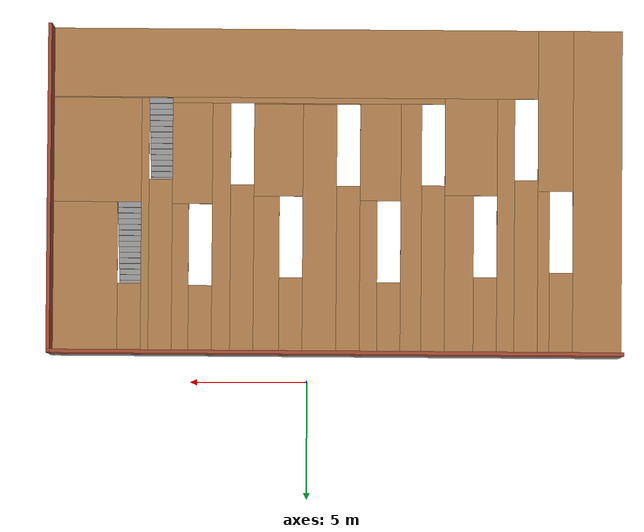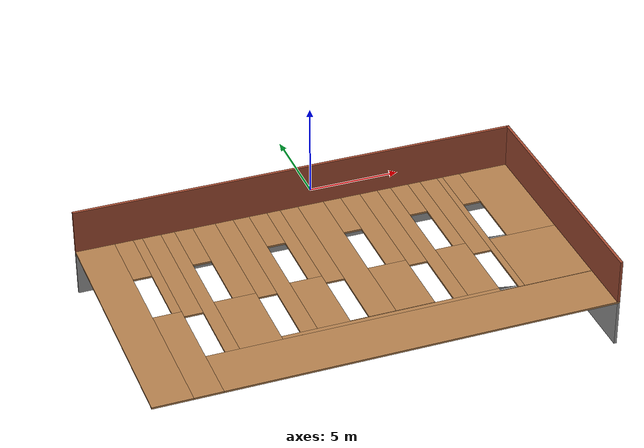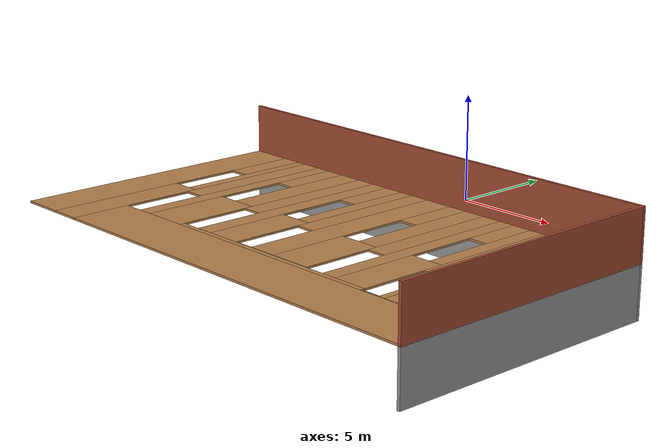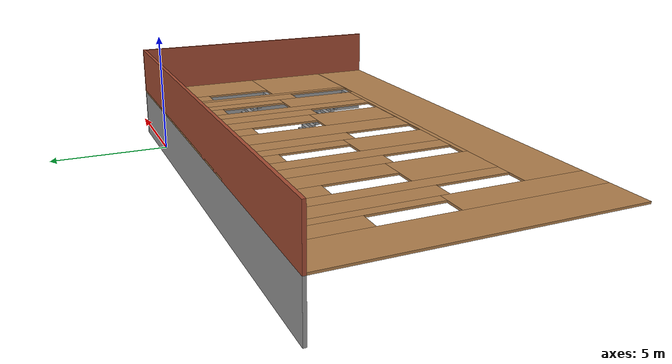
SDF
<sdf version="1.6">
 <world name="default">
  <model name="Untitled_2">
   <pose>-1.18521 -8.18185 -2.6 0 -0 0</pose>
   <link name="Floor_4">
    <pose>1e-06 0 2.5 0 -0 0</pose>
    <visual name="Floor_4_Visual_0">
     <pose>-11.2032 0 0.05 0 -0 0</pose>
     <geometry><box><size>2.09357 14 0.1</size></box></geometry>
     <material>
      <script><uri>file://media/materials/scripts/gazebo.material</uri><name>Gazebo/Wood</name></script>
      <ambient>1 1 1 1</ambient>
     </material>
     <meta><layer>1</layer></meta>
    </visual>
    <collision name="Floor_4_Collision_0">
     <geometry><box><size>2.09357 14 0.1</size></box></geometry>
     <pose>-11.2032 0 0.05 0 -0 0</pose>
    </collision>
    <visual name="Floor_4_Visual_1">
     <pose>-9.40436 -3.55244 0.05 0 -0 0</pose>
     <geometry><box><size>1.50415 6.89513 0.1</size></box></geometry>
     <material>
      <script><uri>file://media/materials/scripts/gazebo.material</uri><name>Gazebo/Wood</name></script>
      <ambient>1 1 1 1</ambient>
     </material>
     <meta><layer>1</layer></meta>
    </visual>
    <collision name="Floor_4_Collision_1">
     <geometry><box><size>1.50415 6.89513 0.1</size></box></geometry>
     <pose>-9.40436 -3.55244 0.05 0 -0 0</pose>
    </collision>
    <visual name="Floor_4_Visual_2">
     <pose>1.79886 -5.52881 0.05 0 -0 0</pose>
     <geometry><box><size>20.9023 2.94238 0.1</size></box></geometry>
     <material>
      <script><uri>file://media/materials/scripts/gazebo.material</uri><name>Gazebo/Wood</name></script>
      <ambient>1 1 1 1</ambient>
     </material>
     <meta><layer>1</layer></meta>
    </visual>
    <collision name="Floor_4_Collision_2">
     <geometry><box><size>20.9023 2.94238 0.1</size></box></geometry>
     <pose>1.79886 -5.52881 0.05 0 -0 0</pose>
    </collision>
    <visual name="Floor_4_Visual_3">
     <pose>-7.27778 1.47119 0.05 0 -0 0</pose>
     <geometry><box><size>0.749006 11.0576 0.1</size></box></geometry>
     <material>
      <script><uri>file://media/materials/scripts/gazebo.material</uri><name>Gazebo/Wood</name></script>
      <ambient>1 1 1 1</ambient>
     </material>
     <meta><layer>1</layer></meta>
    </visual>
    <collision name="Floor_4_Collision_3">
     <geometry><box><size>0.749006 11.0576 0.1</size></box></geometry>
     <pose>-7.27778 1.47119 0.05 0 -0 0</pose>
    </collision>
    <visual name="Floor_4_Visual_4">
     <pose>-5.78392 -1.97631 0.05 0 -0 0</pose>
     <geometry><box><size>2.23873 4.16263 0.1</size></box></geometry>
     <material>
      <script><uri>file://media/materials/scripts/gazebo.material</uri><name>Gazebo/Wood</name></script>
      <ambient>1 1 1 1</ambient>
     </material>
     <meta><layer>1</layer></meta>
    </visual>
    <collision name="Floor_4_Collision_4">
     <geometry><box><size>2.23873 4.16263 0.1</size></box></geometry>
     <pose>-5.78392 -1.97631 0.05 0 -0 0</pose>
    </collision>
    <visual name="Floor_4_Visual_5">
     <pose>1.17713 -3.93519 0.05 0 -0 0</pose>
     <geometry><box><size>11.6834 0.244861 0.1</size></box></geometry>
     <material>
      <script><uri>file://media/materials/scripts/gazebo.material</uri><name>Gazebo/Wood</name></script>
      <ambient>1 1 1 1</ambient>
     </material>
     <meta><layer>1</layer></meta>
    </visual>
    <collision name="Floor_4_Collision_5">
     <geometry><box><size>11.6834 0.244861 0.1</size></box></geometry>
     <pose>1.17713 -3.93519 0.05 0 -0 0</pose>
    </collision>
    <visual name="Floor_4_Visual_6">
     <pose>9.6344 -4.04013 0.05 0 -0 0</pose>
     <geometry><box><size>5.23119 0.03498 0.1</size></box></geometry>
     <material>
      <script><uri>file://media/materials/scripts/gazebo.material</uri><name>Gazebo/Wood</name></script>
      <ambient>1 1 1 1</ambient>
     </material>
     <meta><layer>1</layer></meta>
    </visual>
    <collision name="Floor_4_Collision_6">
     <geometry><box><size>5.23119 0.03498 0.1</size></box></geometry>
     <pose>9.6344 -4.04013 0.05 0 -0 0</pose>
    </collision>
    <visual name="Floor_4_Visual_7">
     <pose>8.18343 1.48868 0.05 0 -0 0</pose>
     <geometry><box><size>0.329245 11.0226 0.1</size></box></geometry>
     <material>
      <script><uri>file://media/materials/scripts/gazebo.material</uri><name>Gazebo/Wood</name></script>
      <ambient>1 1 1 1</ambient>
     </material>
     <meta><layer>1</layer></meta>
    </visual>
    <collision name="Floor_4_Collision_7">
     <geometry><box><size>0.329245 11.0226 0.1</size></box></geometry>
     <pose>8.18343 1.48868 0.05 0 -0 0</pose>
    </collision>
    <visual name="Floor_4_Visual_8">
     <pose>10.299 -1.78392 0.05 0 -0 0</pose>
     <geometry><box><size>3.90194 4.47746 0.1</size></box></geometry>
     <material>
      <script><uri>file://media/materials/scripts/gazebo.material</uri><name>Gazebo/Wood</name></script>
      <ambient>1 1 1 1</ambient>
     </material>
     <meta><layer>1</layer></meta>
    </visual>
    <collision name="Floor_4_Collision_8">
     <geometry><box><size>3.90194 4.47746 0.1</size></box></geometry>
     <pose>10.299 -1.78392 0.05 0 -0 0</pose>
    </collision>
    <visual name="Floor_4_Visual_9">
     <pose>-3.22009 1.59362 0.05 0 -0 0</pose>
     <geometry><box><size>0.888927 10.8128 0.1</size></box></geometry>
     <material>
      <script><uri>file://media/materials/scripts/gazebo.material</uri><name>Gazebo/Wood</name></script>
      <ambient>1 1 1 1</ambient>
     </material>
     <meta><layer>1</layer></meta>
    </visual>
    <collision name="Floor_4_Collision_9">
     <geometry><box><size>0.888927 10.8128 0.1</size></box></geometry>
     <pose>-3.22009 1.59362 0.05 0 -0 0</pose>
    </collision>
    <visual name="Floor_4_Visual_10">
     <pose>4.91279 1.59362 0.05 0 -0 0</pose>
     <geometry><box><size>0.783986 10.8128 0.1</size></box></geometry>
     <material>
      <script><uri>file://media/materials/scripts/gazebo.material</uri><name>Gazebo/Wood</name></script>
      <ambient>1 1 1 1</ambient>
     </material>
     <meta><layer>1</layer></meta>
    </visual>
    <collision name="Floor_4_Collision_10">
     <geometry><box><size>0.783986 10.8128 0.1</size></box></geometry>
     <pose>4.91279 1.59362 0.05 0 -0 0</pose>
    </collision>
    <visual name="Floor_4_Visual_11">
     <pose>-1.90112 -1.73145 0.05 0 -0 0</pose>
     <geometry><box><size>1.74901 4.16263 0.1</size></box></geometry>
     <material>
      <script><uri>file://media/materials/scripts/gazebo.material</uri><name>Gazebo/Wood</name></script>
      <ambient>1 1 1 1</ambient>
     </material>
     <meta><layer>1</layer></meta>
    </visual>
    <collision name="Floor_4_Collision_11">
     <geometry><box><size>1.74901 4.16263 0.1</size></box></geometry>
     <pose>-1.90112 -1.73145 0.05 0 -0 0</pose>
    </collision>
    <visual name="Floor_4_Visual_12">
     <pose>6.1618 -1.644 0.05 0 -0 0</pose>
     <geometry><box><size>1.71403 4.33754 0.1</size></box></geometry>
     <material>
      <script><uri>file://media/materials/scripts/gazebo.material</uri><name>Gazebo/Wood</name></script>
      <ambient>1 1 1 1</ambient>
     </material>
     <meta><layer>1</layer></meta>
    </visual>
    <collision name="Floor_4_Collision_12">
     <geometry><box><size>1.71403 4.33754 0.1</size></box></geometry>
     <pose>6.1618 -1.644 0.05 0 -0 0</pose>
    </collision>
    <visual name="Floor_4_Visual_13">
     <pose>1.24709 -3.79527 0.05 0 -0 0</pose>
     <geometry><box><size>4.54742 0.034981 0.1</size></box></geometry>
     <material>
      <script><uri>file://media/materials/scripts/gazebo.material</uri><name>Gazebo/Wood</name></script>
      <ambient>1 1 1 1</ambient>
     </material>
     <meta><layer>1</layer></meta>
    </visual>
    <collision name="Floor_4_Collision_13">
     <geometry><box><size>4.54742 0.034981 0.1</size></box></geometry>
     <pose>1.24709 -3.79527 0.05 0 -0 0</pose>
    </collision>
    <visual name="Floor_4_Visual_14">
     <pose>0.697686 1.61111 0.05 0 -0 0</pose>
     <geometry><box><size>1.44861 10.7778 0.1</size></box></geometry>
     <material>
      <script><uri>file://media/materials/scripts/gazebo.material</uri><name>Gazebo/Wood</name></script>
      <ambient>1 1 1 1</ambient>
     </material>
     <meta><layer>1</layer></meta>
    </visual>
    <collision name="Floor_4_Collision_14">
     <geometry><box><size>1.44861 10.7778 0.1</size></box></geometry>
     <pose>0.697686 1.61111 0.05 0 -0 0</pose>
    </collision>
    <visual name="Floor_4_Visual_15">
     <pose>2.47139 -1.80141 0.05 0 -0 0</pose>
     <geometry><box><size>2.09881 3.95275 0.1</size></box></geometry>
     <material>
      <script><uri>file://media/materials/scripts/gazebo.material</uri><name>Gazebo/Wood</name></script>
      <ambient>1 1 1 1</ambient>
     </material>
     <meta><layer>1</layer></meta>
    </visual>
    <collision name="Floor_4_Collision_15">
     <geometry><box><size>2.09881 3.95275 0.1</size></box></geometry>
     <pose>2.47139 -1.80141 0.05 0 -0 0</pose>
    </collision>
    <visual name="Floor_4_Visual_16">
     <pose>-8.15228 3.22119 0.05 0 -0 0</pose>
     <geometry><box><size>1 7.55762 0.1</size></box></geometry>
     <material>
      <script><uri>file://media/materials/scripts/gazebo.material</uri><name>Gazebo/Wood</name></script>
      <ambient>1 1 1 1</ambient>
     </material>
     <meta><layer>1</layer></meta>
    </visual>
    <collision name="Floor_4_Collision_16">
     <geometry><box><size>1 7.55762 0.1</size></box></geometry>
     <pose>-8.15228 3.22119 0.05 0 -0 0</pose>
    </collision>
    <visual name="Floor_4_Visual_17">
     <pose>7.51881 3.23868 0.05 0 -0 0</pose>
     <geometry><box><size>1 7.52264 0.1</size></box></geometry>
     <material>
      <script><uri>file://media/materials/scripts/gazebo.material</uri><name>Gazebo/Wood</name></script>
      <ambient>1 1 1 1</ambient>
     </material>
     <meta><layer>1</layer></meta>
    </visual>
    <collision name="Floor_4_Collision_17">
     <geometry><box><size>1 7.52264 0.1</size></box></geometry>
     <pose>7.51881 3.23868 0.05 0 -0 0</pose>
    </collision>
    <visual name="Floor_4_Visual_18">
     <pose>-4.16455 3.34362 0.05 0 -0 0</pose>
     <geometry><box><size>1 7.31276 0.1</size></box></geometry>
     <material>
      <script><uri>file://media/materials/scripts/gazebo.material</uri><name>Gazebo/Wood</name></script>
      <ambient>1 1 1 1</ambient>
     </material>
     <meta><layer>1</layer></meta>
    </visual>
    <collision name="Floor_4_Collision_18">
     <geometry><box><size>1 7.31276 0.1</size></box></geometry>
     <pose>-4.16455 3.34362 0.05 0 -0 0</pose>
    </collision>
    <visual name="Floor_4_Visual_19">
     <pose>4.0208 3.34362 0.05 0 -0 0</pose>
     <geometry><box><size>1 7.31276 0.1</size></box></geometry>
     <material>
      <script><uri>file://media/materials/scripts/gazebo.material</uri><name>Gazebo/Wood</name></script>
      <ambient>1 1 1 1</ambient>
     </material>
     <meta><layer>1</layer></meta>
    </visual>
    <collision name="Floor_4_Collision_19">
     <geometry><box><size>1 7.31276 0.1</size></box></geometry>
     <pose>4.0208 3.34362 0.05 0 -0 0</pose>
    </collision>
    <visual name="Floor_4_Visual_20">
     <pose>-0.526618 3.36111 0.05 0 -0 0</pose>
     <geometry><box><size>1 7.27778 0.1</size></box></geometry>
     <material>
      <script><uri>file://media/materials/scripts/gazebo.material</uri><name>Gazebo/Wood</name></script>
      <ambient>1 1 1 1</ambient>
     </material>
     <meta><layer>1</layer></meta>
    </visual>
    <collision name="Floor_4_Collision_20">
     <geometry><box><size>1 7.27778 0.1</size></box></geometry>
     <pose>-0.526618 3.36111 0.05 0 -0 0</pose>
    </collision>
    <visual name="Floor_4_Visual_21">
     <pose>-8.90436 3.44756 0.05 0 -0 0</pose>
     <geometry><box><size>0.504146 7.10487 0.1</size></box></geometry>
     <material>
      <script><uri>file://media/materials/scripts/gazebo.material</uri><name>Gazebo/Wood</name></script>
      <ambient>1 1 1 1</ambient>
     </material>
     <meta><layer>1</layer></meta>
    </visual>
    <collision name="Floor_4_Collision_21">
     <geometry><box><size>0.504146 7.10487 0.1</size></box></geometry>
     <pose>-8.90436 3.44756 0.05 0 -0 0</pose>
    </collision>
    <visual name="Floor_4_Visual_22">
     <pose>-5.28392 3.55251 0.05 0 -0 0</pose>
     <geometry><box><size>1.23873 6.89499 0.1</size></box></geometry>
     <material>
      <script><uri>file://media/materials/scripts/gazebo.material</uri><name>Gazebo/Wood</name></script>
      <ambient>1 1 1 1</ambient>
     </material>
     <meta><layer>1</layer></meta>
    </visual>
    <collision name="Floor_4_Collision_22">
     <geometry><box><size>1.23873 6.89499 0.1</size></box></geometry>
     <pose>-5.28392 3.55251 0.05 0 -0 0</pose>
    </collision>
    <visual name="Floor_4_Visual_23">
     <pose>2.97139 3.58749 0.05 0 -0 0</pose>
     <geometry><box><size>1.09881 6.82503 0.1</size></box></geometry>
     <material>
      <script><uri>file://media/materials/scripts/gazebo.material</uri><name>Gazebo/Wood</name></script>
      <ambient>1 1 1 1</ambient>
     </material>
     <meta><layer>1</layer></meta>
    </visual>
    <collision name="Floor_4_Collision_23">
     <geometry><box><size>1.09881 6.82503 0.1</size></box></geometry>
     <pose>2.97139 3.58749 0.05 0 -0 0</pose>
    </collision>
    <visual name="Floor_4_Visual_24">
     <pose>-1.40112 3.67494 0.05 0 -0 0</pose>
     <geometry><box><size>0.749006 6.65013 0.1</size></box></geometry>
     <material>
      <script><uri>file://media/materials/scripts/gazebo.material</uri><name>Gazebo/Wood</name></script>
      <ambient>1 1 1 1</ambient>
     </material>
     <meta><layer>1</layer></meta>
    </visual>
    <collision name="Floor_4_Collision_24">
     <geometry><box><size>0.749006 6.65013 0.1</size></box></geometry>
     <pose>-1.40112 3.67494 0.05 0 -0 0</pose>
    </collision>
    <visual name="Floor_4_Visual_25">
     <pose>10.799 3.72741 0.05 0 -0 0</pose>
     <geometry><box><size>2.90194 6.54519 0.1</size></box></geometry>
     <material>
      <script><uri>file://media/materials/scripts/gazebo.material</uri><name>Gazebo/Wood</name></script>
      <ambient>1 1 1 1</ambient>
     </material>
     <meta><layer>1</layer></meta>
    </visual>
    <collision name="Floor_4_Collision_25">
     <geometry><box><size>2.90194 6.54519 0.1</size></box></geometry>
     <pose>10.799 3.72741 0.05 0 -0 0</pose>
    </collision>
    <visual name="Floor_4_Visual_26">
     <pose>6.6618 3.76239 0.05 0 -0 0</pose>
     <geometry><box><size>0.714026 6.47523 0.1</size></box></geometry>
     <material>
      <script><uri>file://media/materials/scripts/gazebo.material</uri><name>Gazebo/Wood</name></script>
      <ambient>1 1 1 1</ambient>
     </material>
     <meta><layer>1</layer></meta>
    </visual>
    <collision name="Floor_4_Collision_26">
     <geometry><box><size>0.714026 6.47523 0.1</size></box></geometry>
     <pose>6.6618 3.76239 0.05 0 -0 0</pose>
    </collision>
    <visual name="Floor_4_Visual_27">
     <pose>-9.65643 5.19756 0.05 0 -0 0</pose>
     <geometry><box><size>1 3.60487 0.1</size></box></geometry>
     <material>
      <script><uri>file://media/materials/scripts/gazebo.material</uri><name>Gazebo/Wood</name></script>
      <ambient>1 1 1 1</ambient>
     </material>
     <meta><layer>1</layer></meta>
    </visual>
    <collision name="Floor_4_Collision_27">
     <geometry><box><size>1 3.60487 0.1</size></box></geometry>
     <pose>-9.65643 5.19756 0.05 0 -0 0</pose>
    </collision>
    <visual name="Floor_4_Visual_28">
     <pose>-6.40328 5.30251 0.05 0 -0 0</pose>
     <geometry><box><size>1 3.39499 0.1</size></box></geometry>
     <material>
      <script><uri>file://media/materials/scripts/gazebo.material</uri><name>Gazebo/Wood</name></script>
      <ambient>1 1 1 1</ambient>
     </material>
     <meta><layer>1</layer></meta>
    </visual>
    <collision name="Floor_4_Collision_28">
     <geometry><box><size>1 3.39499 0.1</size></box></geometry>
     <pose>-6.40328 5.30251 0.05 0 -0 0</pose>
    </collision>
    <visual name="Floor_4_Visual_29">
     <pose>1.92199 5.33749 0.05 0 -0 0</pose>
     <geometry><box><size>1 3.32503 0.1</size></box></geometry>
     <material>
      <script><uri>file://media/materials/scripts/gazebo.material</uri><name>Gazebo/Wood</name></script>
      <ambient>1 1 1 1</ambient>
     </material>
     <meta><layer>1</layer></meta>
    </visual>
    <collision name="Floor_4_Collision_29">
     <geometry><box><size>1 3.32503 0.1</size></box></geometry>
     <pose>1.92199 5.33749 0.05 0 -0 0</pose>
    </collision>
    <visual name="Floor_4_Visual_30">
     <pose>-2.27562 5.42494 0.05 0 -0 0</pose>
     <geometry><box><size>1 3.15013 0.1</size></box></geometry>
     <material>
      <script><uri>file://media/materials/scripts/gazebo.material</uri><name>Gazebo/Wood</name></script>
      <ambient>1 1 1 1</ambient>
     </material>
     <meta><layer>1</layer></meta>
    </visual>
    <collision name="Floor_4_Collision_30">
     <geometry><box><size>1 3.15013 0.1</size></box></geometry>
     <pose>-2.27562 5.42494 0.05 0 -0 0</pose>
    </collision>
    <visual name="Floor_4_Visual_31">
     <pose>8.84806 5.47741 0.05 0 -0 0</pose>
     <geometry><box><size>1 3.04519 0.1</size></box></geometry>
     <material>
      <script><uri>file://media/materials/scripts/gazebo.material</uri><name>Gazebo/Wood</name></script>
      <ambient>1 1 1 1</ambient>
     </material>
     <meta><layer>1</layer></meta>
    </visual>
    <collision name="Floor_4_Collision_31">
     <geometry><box><size>1 3.04519 0.1</size></box></geometry>
     <pose>8.84806 5.47741 0.05 0 -0 0</pose>
    </collision>
    <visual name="Floor_4_Visual_32">
     <pose>5.80478 5.51239 0.05 0 -0 0</pose>
     <geometry><box><size>1 2.97523 0.1</size></box></geometry>
     <material>
      <script><uri>file://media/materials/scripts/gazebo.material</uri><name>Gazebo/Wood</name></script>
      <ambient>1 1 1 1</ambient>
     </material>
     <meta><layer>1</layer></meta>
    </visual>
    <collision name="Floor_4_Collision_32">
     <geometry><box><size>1 2.97523 0.1</size></box></geometry>
     <pose>5.80478 5.51239 0.05 0 -0 0</pose>
    </collision>
   </link>
   <link name="Stairs_46">
    <visual name="Stairs_46_Visual_0">
     <pose>7.51881 -0.639311 0.083333 0 -0 0</pose>
     <geometry><box><size>1 0.233333 0.166667</size></box></geometry>
     <material>
      <script><uri>file://media/materials/scripts/gazebo.material</uri><name>Gazebo/Grey</name></script>
      <ambient>1 1 1 1</ambient>
     </material>
     <meta><layer>0</layer></meta>
    </visual>
    <collision name="Stairs_46_Collision_0">
     <geometry><box><size>1 0.233333 0.166667</size></box></geometry>
     <pose>7.51881 -0.639311 0.083333 0 -0 0</pose>
    </collision>
    <visual name="Stairs_46_Visual_1">
     <pose>7.51881 -0.872644 0.25 0 -0 0</pose>
     <geometry><box><size>1 0.233333 0.166667</size></box></geometry>
     <material>
      <script><uri>file://media/materials/scripts/gazebo.material</uri><name>Gazebo/Grey</name></script>
      <ambient>1 1 1 1</ambient>
     </material>
     <meta><layer>0</layer></meta>
    </visual>
    <collision name="Stairs_46_Collision_1">
     <geometry><box><size>1 0.233333 0.166667</size></box></geometry>
     <pose>7.51881 -0.872644 0.25 0 -0 0</pose>
    </collision>
    <visual name="Stairs_46_Visual_2">
     <pose>7.51881 -1.10598 0.416667 0 -0 0</pose>
     <geometry><box><size>1 0.233333 0.166667</size></box></geometry>
     <material>
      <script><uri>file://media/materials/scripts/gazebo.material</uri><name>Gazebo/Grey</name></script>
      <ambient>1 1 1 1</ambient>
     </material>
     <meta><layer>0</layer></meta>
    </visual>
    <collision name="Stairs_46_Collision_2">
     <geometry><box><size>1 0.233333 0.166667</size></box></geometry>
     <pose>7.51881 -1.10598 0.416667 0 -0 0</pose>
    </collision>
    <visual name="Stairs_46_Visual_3">
     <pose>7.51881 -1.33931 0.583333 0 -0 0</pose>
     <geometry><box><size>1 0.233333 0.166667</size></box></geometry>
     <material>
      <script><uri>file://media/materials/scripts/gazebo.material</uri><name>Gazebo/Grey</name></script>
      <ambient>1 1 1 1</ambient>
     </material>
     <meta><layer>0</layer></meta>
    </visual>
    <collision name="Stairs_46_Collision_3">
     <geometry><box><size>1 0.233333 0.166667</size></box></geometry>
     <pose>7.51881 -1.33931 0.583333 0 -0 0</pose>
    </collision>
    <visual name="Stairs_46_Visual_4">
     <pose>7.51881 -1.57264 0.75 0 -0 0</pose>
     <geometry><box><size>1 0.233333 0.166667</size></box></geometry>
     <material>
      <script><uri>file://media/materials/scripts/gazebo.material</uri><name>Gazebo/Grey</name></script>
      <ambient>1 1 1 1</ambient>
     </material>
     <meta><layer>0</layer></meta>
    </visual>
    <collision name="Stairs_46_Collision_4">
     <geometry><box><size>1 0.233333 0.166667</size></box></geometry>
     <pose>7.51881 -1.57264 0.75 0 -0 0</pose>
    </collision>
    <visual name="Stairs_46_Visual_5">
     <pose>7.51881 -1.80598 0.916667 0 -0 0</pose>
     <geometry><box><size>1 0.233333 0.166667</size></box></geometry>
     <material>
      <script><uri>file://media/materials/scripts/gazebo.material</uri><name>Gazebo/Grey</name></script>
      <ambient>1 1 1 1</ambient>
     </material>
     <meta><layer>0</layer></meta>
    </visual>
    <collision name="Stairs_46_Collision_5">
     <geometry><box><size>1 0.233333 0.166667</size></box></geometry>
     <pose>7.51881 -1.80598 0.916667 0 -0 0</pose>
    </collision>
    <visual name="Stairs_46_Visual_6">
     <pose>7.51881 -2.03931 1.08333 0 -0 0</pose>
     <geometry><box><size>1 0.233333 0.166667</size></box></geometry>
     <material>
      <script><uri>file://media/materials/scripts/gazebo.material</uri><name>Gazebo/Grey</name></script>
      <ambient>1 1 1 1</ambient>
     </material>
     <meta><layer>0</layer></meta>
    </visual>
    <collision name="Stairs_46_Collision_6">
     <geometry><box><size>1 0.233333 0.166667</size></box></geometry>
     <pose>7.51881 -2.03931 1.08333 0 -0 0</pose>
    </collision>
    <visual name="Stairs_46_Visual_7">
     <pose>7.51881 -2.27264 1.25 0 -0 0</pose>
     <geometry><box><size>1 0.233333 0.166667</size></box></geometry>
     <material>
      <script><uri>file://media/materials/scripts/gazebo.material</uri><name>Gazebo/Grey</name></script>
      <ambient>1 1 1 1</ambient>
     </material>
     <meta><layer>0</layer></meta>
    </visual>
    <collision name="Stairs_46_Collision_7">
     <geometry><box><size>1 0.233333 0.166667</size></box></geometry>
     <pose>7.51881 -2.27264 1.25 0 -0 0</pose>
    </collision>
    <visual name="Stairs_46_Visual_8">
     <pose>7.51881 -2.50598 1.41667 0 -0 0</pose>
     <geometry><box><size>1 0.233333 0.166667</size></box></geometry>
     <material>
      <script><uri>file://media/materials/scripts/gazebo.material</uri><name>Gazebo/Grey</name></script>
      <ambient>1 1 1 1</ambient>
     </material>
     <meta><layer>0</layer></meta>
    </visual>
    <collision name="Stairs_46_Collision_8">
     <geometry><box><size>1 0.233333 0.166667</size></box></geometry>
     <pose>7.51881 -2.50598 1.41667 0 -0 0</pose>
    </collision>
    <visual name="Stairs_46_Visual_9">
     <pose>7.51881 -2.73931 1.58333 0 -0 0</pose>
     <geometry><box><size>1 0.233333 0.166667</size></box></geometry>
     <material>
      <script><uri>file://media/materials/scripts/gazebo.material</uri><name>Gazebo/Grey</name></script>
      <ambient>1 1 1 1</ambient>
     </material>
     <meta><layer>0</layer></meta>
    </visual>
    <collision name="Stairs_46_Collision_9">
     <geometry><box><size>1 0.233333 0.166667</size></box></geometry>
     <pose>7.51881 -2.73931 1.58333 0 -0 0</pose>
    </collision>
    <visual name="Stairs_46_Visual_10">
     <pose>7.51881 -2.97264 1.75 0 -0 0</pose>
     <geometry><box><size>1 0.233333 0.166667</size></box></geometry>
     <material>
      <script><uri>file://media/materials/scripts/gazebo.material</uri><name>Gazebo/Grey</name></script>
      <ambient>1 1 1 1</ambient>
     </material>
     <meta><layer>0</layer></meta>
    </visual>
    <collision name="Stairs_46_Collision_10">
     <geometry><box><size>1 0.233333 0.166667</size></box></geometry>
     <pose>7.51881 -2.97264 1.75 0 -0 0</pose>
    </collision>
    <visual name="Stairs_46_Visual_11">
     <pose>7.51881 -3.20598 1.91667 0 -0 0</pose>
     <geometry><box><size>1 0.233333 0.166667</size></box></geometry>
     <material>
      <script><uri>file://media/materials/scripts/gazebo.material</uri><name>Gazebo/Grey</name></script>
      <ambient>1 1 1 1</ambient>
     </material>
     <meta><layer>0</layer></meta>
    </visual>
    <collision name="Stairs_46_Collision_11">
     <geometry><box><size>1 0.233333 0.166667</size></box></geometry>
     <pose>7.51881 -3.20598 1.91667 0 -0 0</pose>
    </collision>
    <visual name="Stairs_46_Visual_12">
     <pose>7.51881 -3.43931 2.08333 0 -0 0</pose>
     <geometry><box><size>1 0.233333 0.166667</size></box></geometry>
     <material>
      <script><uri>file://media/materials/scripts/gazebo.material</uri><name>Gazebo/Grey</name></script>
      <ambient>1 1 1 1</ambient>
     </material>
     <meta><layer>0</layer></meta>
    </visual>
    <collision name="Stairs_46_Collision_12">
     <geometry><box><size>1 0.233333 0.166667</size></box></geometry>
     <pose>7.51881 -3.43931 2.08333 0 -0 0</pose>
    </collision>
    <visual name="Stairs_46_Visual_13">
     <pose>7.51881 -3.67264 2.25 0 -0 0</pose>
     <geometry><box><size>1 0.233333 0.166667</size></box></geometry>
     <material>
      <script><uri>file://media/materials/scripts/gazebo.material</uri><name>Gazebo/Grey</name></script>
      <ambient>1 1 1 1</ambient>
     </material>
     <meta><layer>0</layer></meta>
    </visual>
    <collision name="Stairs_46_Collision_13">
     <geometry><box><size>1 0.233333 0.166667</size></box></geometry>
     <pose>7.51881 -3.67264 2.25 0 -0 0</pose>
    </collision>
    <visual name="Stairs_46_Visual_14">
     <pose>7.51881 -3.90598 2.41667 0 -0 0</pose>
     <geometry><box><size>1 0.233333 0.166667</size></box></geometry>
     <material>
      <script><uri>file://media/materials/scripts/gazebo.material</uri><name>Gazebo/Grey</name></script>
      <ambient>1 1 1 1</ambient>
     </material>
     <meta><layer>0</layer></meta>
    </visual>
    <collision name="Stairs_46_Collision_14">
     <geometry><box><size>1 0.233333 0.166667</size></box></geometry>
     <pose>7.51881 -3.90598 2.41667 0 -0 0</pose>
    </collision>
   </link>
   <link name="Stairs_47">
    <visual name="Stairs_47_Visual_0">
     <pose>8.84806 3.83815 0.083333 0 -0 0</pose>
     <geometry><box><size>1 0.233333 0.166667</size></box></geometry>
     <material>
      <script><uri>file://media/materials/scripts/gazebo.material</uri><name>Gazebo/Grey</name></script>
      <ambient>1 1 1 1</ambient>
     </material>
     <meta><layer>0</layer></meta>
    </visual>
    <collision name="Stairs_47_Collision_0">
     <geometry><box><size>1 0.233333 0.166667</size></box></geometry>
     <pose>8.84806 3.83815 0.083333 0 -0 0</pose>
    </collision>
    <visual name="Stairs_47_Visual_1">
     <pose>8.84806 3.60481 0.25 0 -0 0</pose>
     <geometry><box><size>1 0.233333 0.166667</size></box></geometry>
     <material>
      <script><uri>file://media/materials/scripts/gazebo.material</uri><name>Gazebo/Grey</name></script>
      <ambient>1 1 1 1</ambient>
     </material>
     <meta><layer>0</layer></meta>
    </visual>
    <collision name="Stairs_47_Collision_1">
     <geometry><box><size>1 0.233333 0.166667</size></box></geometry>
     <pose>8.84806 3.60481 0.25 0 -0 0</pose>
    </collision>
    <visual name="Stairs_47_Visual_2">
     <pose>8.84806 3.37148 0.416667 0 -0 0</pose>
     <geometry><box><size>1 0.233333 0.166667</size></box></geometry>
     <material>
      <script><uri>file://media/materials/scripts/gazebo.material</uri><name>Gazebo/Grey</name></script>
      <ambient>1 1 1 1</ambient>
     </material>
     <meta><layer>0</layer></meta>
    </visual>
    <collision name="Stairs_47_Collision_2">
     <geometry><box><size>1 0.233333 0.166667</size></box></geometry>
     <pose>8.84806 3.37148 0.416667 0 -0 0</pose>
    </collision>
    <visual name="Stairs_47_Visual_3">
     <pose>8.84806 3.13815 0.583333 0 -0 0</pose>
     <geometry><box><size>1 0.233333 0.166667</size></box></geometry>
     <material>
      <script><uri>file://media/materials/scripts/gazebo.material</uri><name>Gazebo/Grey</name></script>
      <ambient>1 1 1 1</ambient>
     </material>
     <meta><layer>0</layer></meta>
    </visual>
    <collision name="Stairs_47_Collision_3">
     <geometry><box><size>1 0.233333 0.166667</size></box></geometry>
     <pose>8.84806 3.13815 0.583333 0 -0 0</pose>
    </collision>
    <visual name="Stairs_47_Visual_4">
     <pose>8.84806 2.90481 0.75 0 -0 0</pose>
     <geometry><box><size>1 0.233333 0.166667</size></box></geometry>
     <material>
      <script><uri>file://media/materials/scripts/gazebo.material</uri><name>Gazebo/Grey</name></script>
      <ambient>1 1 1 1</ambient>
     </material>
     <meta><layer>0</layer></meta>
    </visual>
    <collision name="Stairs_47_Collision_4">
     <geometry><box><size>1 0.233333 0.166667</size></box></geometry>
     <pose>8.84806 2.90481 0.75 0 -0 0</pose>
    </collision>
    <visual name="Stairs_47_Visual_5">
     <pose>8.84806 2.67148 0.916667 0 -0 0</pose>
     <geometry><box><size>1 0.233333 0.166667</size></box></geometry>
     <material>
      <script><uri>file://media/materials/scripts/gazebo.material</uri><name>Gazebo/Grey</name></script>
      <ambient>1 1 1 1</ambient>
     </material>
     <meta><layer>0</layer></meta>
    </visual>
    <collision name="Stairs_47_Collision_5">
     <geometry><box><size>1 0.233333 0.166667</size></box></geometry>
     <pose>8.84806 2.67148 0.916667 0 -0 0</pose>
    </collision>
    <visual name="Stairs_47_Visual_6">
     <pose>8.84806 2.43815 1.08333 0 -0 0</pose>
     <geometry><box><size>1 0.233333 0.166667</size></box></geometry>
     <material>
      <script><uri>file://media/materials/scripts/gazebo.material</uri><name>Gazebo/Grey</name></script>
      <ambient>1 1 1 1</ambient>
     </material>
     <meta><layer>0</layer></meta>
    </visual>
    <collision name="Stairs_47_Collision_6">
     <geometry><box><size>1 0.233333 0.166667</size></box></geometry>
     <pose>8.84806 2.43815 1.08333 0 -0 0</pose>
    </collision>
    <visual name="Stairs_47_Visual_7">
     <pose>8.84806 2.20481 1.25 0 -0 0</pose>
     <geometry><box><size>1 0.233333 0.166667</size></box></geometry>
     <material>
      <script><uri>file://media/materials/scripts/gazebo.material</uri><name>Gazebo/Grey</name></script>
      <ambient>1 1 1 1</ambient>
     </material>
     <meta><layer>0</layer></meta>
    </visual>
    <collision name="Stairs_47_Collision_7">
     <geometry><box><size>1 0.233333 0.166667</size></box></geometry>
     <pose>8.84806 2.20481 1.25 0 -0 0</pose>
    </collision>
    <visual name="Stairs_47_Visual_8">
     <pose>8.84806 1.97148 1.41667 0 -0 0</pose>
     <geometry><box><size>1 0.233333 0.166667</size></box></geometry>
     <material>
      <script><uri>file://media/materials/scripts/gazebo.material</uri><name>Gazebo/Grey</name></script>
      <ambient>1 1 1 1</ambient>
     </material>
     <meta><layer>0</layer></meta>
    </visual>
    <collision name="Stairs_47_Collision_8">
     <geometry><box><size>1 0.233333 0.166667</size></box></geometry>
     <pose>8.84806 1.97148 1.41667 0 -0 0</pose>
    </collision>
    <visual name="Stairs_47_Visual_9">
     <pose>8.84806 1.73815 1.58333 0 -0 0</pose>
     <geometry><box><size>1 0.233333 0.166667</size></box></geometry>
     <material>
      <script><uri>file://media/materials/scripts/gazebo.material</uri><name>Gazebo/Grey</name></script>
      <ambient>1 1 1 1</ambient>
     </material>
     <meta><layer>0</layer></meta>
    </visual>
    <collision name="Stairs_47_Collision_9">
     <geometry><box><size>1 0.233333 0.166667</size></box></geometry>
     <pose>8.84806 1.73815 1.58333 0 -0 0</pose>
    </collision>
    <visual name="Stairs_47_Visual_10">
     <pose>8.84806 1.50481 1.75 0 -0 0</pose>
     <geometry><box><size>1 0.233333 0.166667</size></box></geometry>
     <material>
      <script><uri>file://media/materials/scripts/gazebo.material</uri><name>Gazebo/Grey</name></script>
      <ambient>1 1 1 1</ambient>
     </material>
     <meta><layer>0</layer></meta>
    </visual>
    <collision name="Stairs_47_Collision_10">
     <geometry><box><size>1 0.233333 0.166667</size></box></geometry>
     <pose>8.84806 1.50481 1.75 0 -0 0</pose>
    </collision>
    <visual name="Stairs_47_Visual_11">
     <pose>8.84806 1.27148 1.91667 0 -0 0</pose>
     <geometry><box><size>1 0.233333 0.166667</size></box></geometry>
     <material>
      <script><uri>file://media/materials/scripts/gazebo.material</uri><name>Gazebo/Grey</name></script>
      <ambient>1 1 1 1</ambient>
     </material>
     <meta><layer>0</layer></meta>
    </visual>
    <collision name="Stairs_47_Collision_11">
     <geometry><box><size>1 0.233333 0.166667</size></box></geometry>
     <pose>8.84806 1.27148 1.91667 0 -0 0</pose>
    </collision>
    <visual name="Stairs_47_Visual_12">
     <pose>8.84806 1.03815 2.08333 0 -0 0</pose>
     <geometry><box><size>1 0.233333 0.166667</size></box></geometry>
     <material>
      <script><uri>file://media/materials/scripts/gazebo.material</uri><name>Gazebo/Grey</name></script>
      <ambient>1 1 1 1</ambient>
     </material>
     <meta><layer>0</layer></meta>
    </visual>
    <collision name="Stairs_47_Collision_12">
     <geometry><box><size>1 0.233333 0.166667</size></box></geometry>
     <pose>8.84806 1.03815 2.08333 0 -0 0</pose>
    </collision>
    <visual name="Stairs_47_Visual_13">
     <pose>8.84806 0.804812 2.25 0 -0 0</pose>
     <geometry><box><size>1 0.233333 0.166667</size></box></geometry>
     <material>
      <script><uri>file://media/materials/scripts/gazebo.material</uri><name>Gazebo/Grey</name></script>
      <ambient>1 1 1 1</ambient>
     </material>
     <meta><layer>0</layer></meta>
    </visual>
    <collision name="Stairs_47_Collision_13">
     <geometry><box><size>1 0.233333 0.166667</size></box></geometry>
     <pose>8.84806 0.804812 2.25 0 -0 0</pose>
    </collision>
    <visual name="Stairs_47_Visual_14">
     <pose>8.84806 0.571479 2.41667 0 -0 0</pose>
     <geometry><box><size>1 0.233333 0.166667</size></box></geometry>
     <material>
      <script><uri>file://media/materials/scripts/gazebo.material</uri><name>Gazebo/Grey</name></script>
      <ambient>1 1 1 1</ambient>
     </material>
     <meta><layer>0</layer></meta>
    </visual>
    <collision name="Stairs_47_Collision_14">
     <geometry><box><size>1 0.233333 0.166667</size></box></geometry>
     <pose>8.84806 0.571479 2.41667 0 -0 0</pose>
    </collision>
   </link>
   <link name="Wall_38">
    <collision name="Wall_38_Collision">
     <geometry><box><size>14 0.15 2.5</size></box></geometry>
     <pose>0 0 1.25 0 -0 0</pose>
    </collision>
    <visual name="Wall_38_Visual">
     <pose>0 0 1.25 0 -0 0</pose>
     <geometry><box><size>14 0.15 2.5</size></box></geometry>
     <material>
      <script><uri>file://media/materials/scripts/gazebo.material</uri><name>Gazebo/Grey</name></script>
      <ambient>1 1 1 1</ambient>
     </material>
     <meta><layer>0</layer></meta>
    </visual>
    <pose>12.175 0 0 0 -0 1.5708</pose>
   </link>
   <link name="Wall_39">
    <collision name="Wall_39_Collision">
     <geometry><box><size>24.5 0.15 2.5</size></box></geometry>
     <pose>0 0 1.25 0 -0 0</pose>
    </collision>
    <visual name="Wall_39_Visual">
     <pose>0 0 1.25 0 -0 0</pose>
     <geometry><box><size>24.5 0.15 2.5</size></box></geometry>
     <material>
      <script><uri>file://media/materials/scripts/gazebo.material</uri><name>Gazebo/Grey</name></script>
      <ambient>1 1 1 1</ambient>
     </material>
     <meta><layer>0</layer></meta>
    </visual>
    <pose>1e-06 6.925 0 0 -0 3.14159</pose>
   </link>
   <link name="Wall_43">
    <collision name="Wall_43_Collision">
     <geometry><box><size>14 0.15 2.5</size></box></geometry>
     <pose>0 0 1.25 0 -0 0</pose>
    </collision>
    <visual name="Wall_43_Visual">
     <pose>0 0 1.25 0 -0 0</pose>
     <geometry><box><size>14 0.15 2.5</size></box></geometry>
     <material>
      <script><uri>file://media/materials/scripts/gazebo.material</uri><name>Gazebo/Bricks</name></script>
      <ambient>1 1 1 1</ambient>
     </material>
     <meta><layer>1</layer></meta>
    </visual>
    <pose>12.175 0 2.5 0 -0 1.5708</pose>
   </link>
   <link name="Wall_44">
    <collision name="Wall_44_Collision">
     <geometry><box><size>24.5 0.15 2.5</size></box></geometry>
     <pose>0 0 1.25 0 -0 0</pose>
    </collision>
    <visual name="Wall_44_Visual">
     <pose>0 0 1.25 0 -0 0</pose>
     <geometry><box><size>24.5 0.15 2.5</size></box></geometry>
     <material>
      <script><uri>file://media/materials/scripts/gazebo.material</uri><name>Gazebo/Bricks</name></script>
      <ambient>1 1 1 1</ambient>
     </material>
     <meta><layer>1</layer></meta>
    </visual>
    <pose>1e-06 6.925 2.5 0 -0 3.14159</pose>
   </link>
   <static>1</static>
  </model>
 </world>
</sdf>
